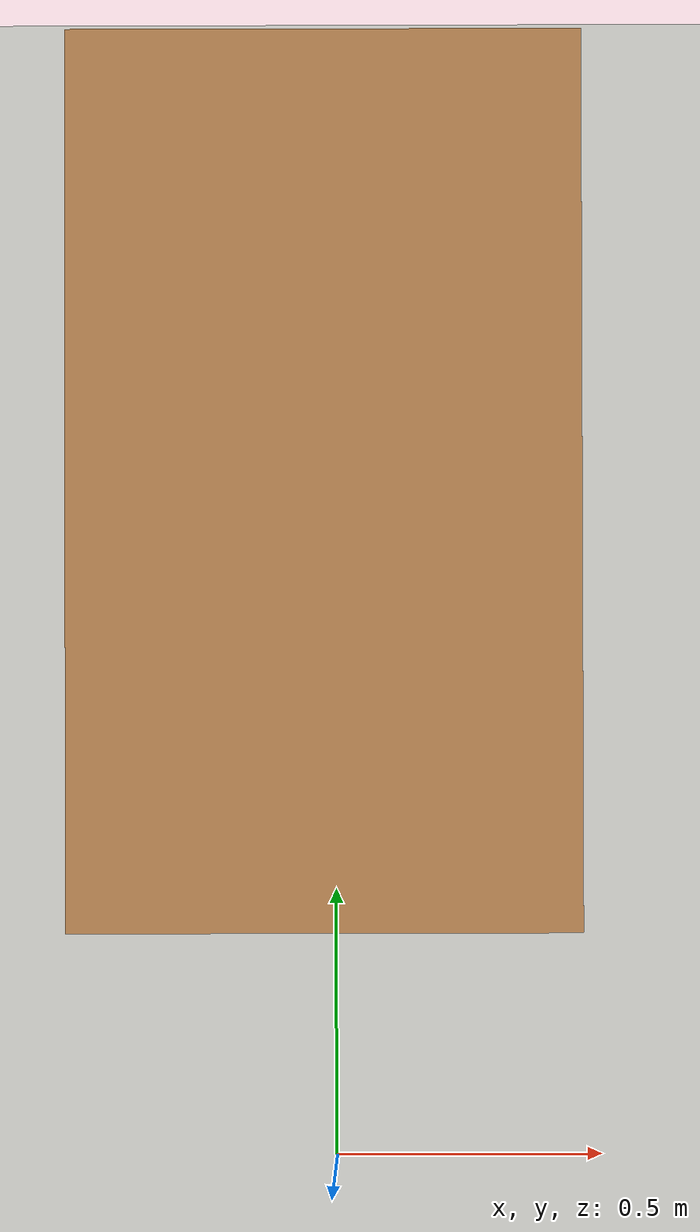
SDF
<sdf version="1.4">
 <world name="inescop">
  <include><uri>model://sun</uri></include>
  <include><uri>model://april_ground_plane</uri></include>
  <physics type="ode">
   <real_time_update_rate>1000.0</real_time_update_rate>
   <max_step_size>0.001</max_step_size>
   <real_time_factor>1</real_time_factor>
   <ode>
    <solver>
     <type>quick</type>
     <iters>150</iters>
     <precon_iters>0</precon_iters>
     <sor>1.400000</sor>
     <use_dynamic_moi_rescaling>1</use_dynamic_moi_rescaling>
    </solver>
    <constraints>
     <cfm>0.00001</cfm>
     <erp>0.2</erp>
     <contact_max_correcting_vel>2000.000000</contact_max_correcting_vel>
     <contact_surface_layer>0.01000</contact_surface_layer>
    </constraints>
   </ode>
  </physics>
  <scene><ambient>0.4 0.4 0.4 1</ambient><background>0.7 0.7 0.7 1</background><shadows>false</shadows></scene>
  <include><pose>0 1.2 0 0 0 1.57</pose><uri>model://table</uri></include>
 </world>
</sdf>

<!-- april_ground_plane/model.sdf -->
<sdf version="1.5">
  <model name="april_ground_plane">
    <static>true</static>
    <link name="link">
      <collision name="collision">
        <geometry>
          <plane>
            <normal>0 0 1</normal>
            <size>100 100</size>
          </plane>
        </geometry>
        <surface>
          <contact>
             <collide_bitmask>0xffff</collide_bitmask>
          </contact>
          <friction>
            <ode>
              <mu>100</mu>
              <mu2>50</mu2>
            </ode>
          </friction>
        </surface>
      </collision>
      <visual name="visual">
        <cast_shadows>false</cast_shadows>
        <geometry>
          <plane>
            <normal>0 0 1</normal>
            <size>100 100</size>
          </plane>
        </geometry>
        <material>
          <script>
            <uri>file://media/materials/scripts/gazebo.material</uri>
            <name>Gazebo/CeilingTiled</name>
          </script>
        </material>
      </visual>
    </link>
  </model>
</sdf>

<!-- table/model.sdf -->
<sdf version='1.6'>
  <model name='table'>
    <link name='link'>
      <collision name='surface'>
        <pose frame=''>0 0 1 0 0 0</pose>
        <geometry>
          <box>
            <size>1.4 0.8 0.03</size>
          </box>
        </geometry>
        <surface>
          <friction>
            <ode>
              <mu>0.6</mu>
              <mu2>0.6</mu2>
            </ode>
          </friction>
        </surface>
      </collision>
      <visual name='visual1'>
        <pose frame=''>0 0 1 0 0 0</pose>
        <geometry>
          <box>
            <size>1.4 0.8 0.04</size>
          </box>
        </geometry>
        <material>
          <script>
            <uri>file://media/materials/scripts/gazebo.material</uri>
            <name>Gazebo/Wood</name>
          </script>
        </material>
      </visual>
      <collision name='front_left_leg'>
        <pose frame=''>0.68 0.38 0.5 0 0 0</pose>
        <geometry>
          <cylinder>
            <radius>0.02</radius>
            <length>1</length>
          </cylinder>
        </geometry>
      </collision>
      <visual name='front_left_leg'>
        <pose frame=''>0.68 0.38 0.5 0 0 0</pose>
        <geometry>
          <cylinder>
            <radius>0.02</radius>
            <length>1</length>
          </cylinder>
        </geometry>
        <material>
          <script>
            <uri>file://media/materials/scripts/gazebo.material</uri>
            <name>Gazebo/Grey</name>
          </script>
        </material>
      </visual>
      <collision name='front_right_leg'>
        <pose frame=''>0.68 -0.38 0.5 0 0 0</pose>
        <geometry>
          <cylinder>
            <radius>0.02</radius>
            <length>1</length>
          </cylinder>
        </geometry>
      </collision>
      <visual name='front_right_leg'>
        <pose frame=''>0.68 -0.38 0.5 0 0 0</pose>
        <geometry>
          <cylinder>
            <radius>0.02</radius>
            <length>1</length>
          </cylinder>
        </geometry>
        <material>
          <script>
            <uri>file://media/materials/scripts/gazebo.material</uri>
            <name>Gazebo/Grey</name>
          </script>
        </material>
      </visual>
      <collision name='back_right_leg'>
        <pose frame=''>-0.68 -0.38 0.5 0 0 0</pose>
        <geometry>
          <cylinder>
            <radius>0.02</radius>
            <length>1</length>
          </cylinder>
        </geometry>
      </collision>
      <visual name='back_right_leg'>
        <pose frame=''>-0.68 -0.38 0.5 0 0 0</pose>
        <geometry>
          <cylinder>
            <radius>0.02</radius>
            <length>1</length>
          </cylinder>
        </geometry>
        <material>
          <script>
            <uri>file://media/materials/scripts/gazebo.material</uri>
            <name>Gazebo/Grey</name>
          </script>
        </material>
      </visual>
      <collision name='back_left_leg'>
        <pose frame=''>-0.68 0.38 0.5 0 0 0</pose>
        <geometry>
          <cylinder>
            <radius>0.02</radius>
            <length>1</length>
          </cylinder>
        </geometry>
      </collision>
      <visual name='back_left_leg'>
        <pose frame=''>-0.68 0.38 0.5 0 0 0</pose>
        <geometry>
          <cylinder>
            <radius>0.02</radius>
            <length>1</length>
          </cylinder>
        </geometry>
        <material>
          <script>
            <uri>file://media/materials/scripts/gazebo.material</uri>
            <name>Gazebo/Grey</name>
          </script>
        </material>
      </visual>
    </link>

    <static>1</static>
    <allow_auto_disable>1</allow_auto_disable>
  </model>
</sdf>
